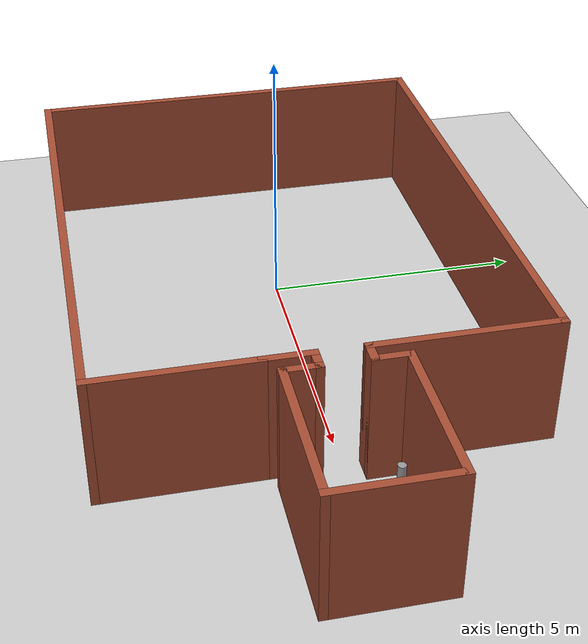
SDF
<sdf version="1.7">
 <world name="default">
  <light name="sun" type="directional">
   <pose>0 0 10 0 -0 0</pose>
   <diffuse>0.8 0.8 0.8 1</diffuse>
   <specular>0.2 0.2 0.2 1</specular>
   <attenuation>
    <range>1000</range>
    <constant>0.9</constant>
    <linear>0.01</linear>
    <quadratic>0.001</quadratic>
   </attenuation>
   <direction>-0.5 0.1 -0.9</direction>
   <spot><inner_angle>0</inner_angle><outer_angle>0</outer_angle><falloff>0</falloff></spot>
  </light>
  <model name="ground_plane">
   <static>1</static>
   <link name="link">
    <collision name="collision">
     <geometry><plane><normal>0 0 1</normal><size>100 100</size></plane></geometry>
     <surface><friction><ode><mu>100</mu><mu2>50</mu2></ode></friction></surface>
    </collision>
    <visual name="visual">
     <cast_shadows>0</cast_shadows>
     <geometry><plane><normal>0 0 1</normal><size>100 100</size></plane></geometry>
     <material>
      <script><uri>file://media/materials/scripts/gazebo.material</uri><name>Gazebo/Grey</name></script>
     </material>
    </visual>
   </link>
  </model>
  <gravity>0 0 -9.8</gravity>
  <magnetic_field>6e-06 2.3e-05 -4.2e-05</magnetic_field>
  <atmosphere type="adiabatic"/>
  <physics type="ode">
   <max_step_size>0.001</max_step_size>
   <real_time_factor>1</real_time_factor>
   <real_time_update_rate>1000</real_time_update_rate>
  </physics>
  <scene><ambient>0.4 0.4 0.4 1</ambient><background>0.7 0.7 0.7 1</background><shadows>1</shadows></scene>
  <audio><device>default</device></audio>
  <spherical_coordinates>
   <surface_model>EARTH_WGS84</surface_model>
   <latitude_deg>0</latitude_deg>
   <longitude_deg>0</longitude_deg>
   <elevation>0</elevation>
   <heading_deg>0</heading_deg>
  </spherical_coordinates>
  <model name="test6">
   <pose>2.27413 -0.22029 0 0 -0 0</pose>
   <link name="Wall_0">
    <collision name="Wall_0_Collision">
     <geometry><box><size>10 0.15 2.5</size></box></geometry>
     <pose>0 0 1.25 0 -0 0</pose>
    </collision>
    <visual name="Wall_0_Visual">
     <pose>0 0 1.25 0 -0 0</pose>
     <geometry><box><size>10 0.15 2.5</size></box></geometry>
     <material>
      <script><uri>file://media/materials/scripts/gazebo.material</uri><name>Gazebo/Bricks</name></script>
      <ambient>1 1 1 1</ambient>
     </material>
     <meta><layer>0</layer></meta>
    </visual>
    <pose>-1.6 3.975 0 0 -0 0</pose>
   </link>
   <link name="Wall_1">
    <collision name="Wall_1_Collision">
     <geometry><box><size>3.5 0.15 2.5</size></box></geometry>
     <pose>0 0 1.25 0 -0 0</pose>
    </collision>
    <visual name="Wall_1_Visual">
     <pose>0 0 1.25 0 -0 0</pose>
     <geometry><box><size>3.5 0.15 2.5</size></box></geometry>
     <material>
      <script><uri>file://media/materials/scripts/gazebo.material</uri><name>Gazebo/Bricks</name></script>
      <ambient>1 1 1 1</ambient>
     </material>
     <meta><layer>0</layer></meta>
    </visual>
    <pose>3.325 2.3 0 0 -0 -1.5708</pose>
   </link>
   <link name="Wall_14">
    <collision name="Wall_14_Collision">
     <geometry><box><size>3 0.15 2.5</size></box></geometry>
     <pose>0 0 1.25 0 -0 0</pose>
    </collision>
    <visual name="Wall_14_Visual">
     <pose>0 0 1.25 0 -0 0</pose>
     <geometry><box><size>3 0.15 2.5</size></box></geometry>
     <material>
      <script><uri>file://media/materials/scripts/gazebo.material</uri><name>Gazebo/Bricks</name></script>
      <ambient>1 1 1 1</ambient>
     </material>
     <meta><layer>0</layer></meta>
    </visual>
    <pose>5.1 1.225 0 0 -0 0</pose>
   </link>
   <link name="Wall_15">
    <collision name="Wall_15_Collision">
     <geometry><box><size>2.25 0.15 2.5</size></box></geometry>
     <pose>0 0 1.25 0 -0 0</pose>
    </collision>
    <visual name="Wall_15_Visual">
     <pose>0 0 1.25 0 -0 0</pose>
     <geometry><box><size>2.25 0.15 2.5</size></box></geometry>
     <material>
      <script><uri>file://media/materials/scripts/gazebo.material</uri><name>Gazebo/Bricks</name></script>
      <ambient>1 1 1 1</ambient>
     </material>
     <meta><layer>0</layer></meta>
    </visual>
    <pose>6.525 0.175 0 0 -0 -1.5708</pose>
   </link>
   <link name="Wall_16">
    <collision name="Wall_16_Collision">
     <geometry><box><size>3 0.15 2.5</size></box></geometry>
     <pose>0 0 1.25 0 -0 0</pose>
    </collision>
    <visual name="Wall_16_Visual">
     <pose>0 0 1.25 0 -0 0</pose>
     <geometry><box><size>3 0.15 2.5</size></box></geometry>
     <material>
      <script><uri>file://media/materials/scripts/gazebo.material</uri><name>Gazebo/Bricks</name></script>
      <ambient>1 1 1 1</ambient>
     </material>
     <meta><layer>0</layer></meta>
    </visual>
    <pose>5.1 -0.875 0 0 -0 3.14159</pose>
   </link>
   <link name="Wall_19">
    <collision name="Wall_19_Collision">
     <geometry><box><size>0.75 0.15 2.5</size></box></geometry>
     <pose>0 0 1.25 0 -0 0</pose>
    </collision>
    <visual name="Wall_19_Visual">
     <pose>0 0 1.25 0 -0 0</pose>
     <geometry><box><size>0.75 0.15 2.5</size></box></geometry>
     <material>
      <script><uri>file://media/materials/scripts/gazebo.material</uri><name>Gazebo/Bricks</name></script>
      <ambient>1 1 1 1</ambient>
     </material>
     <meta><layer>0</layer></meta>
    </visual>
    <pose>3.675 -0.575 0 0 -0 1.5708</pose>
   </link>
   <link name="Wall_2">
    <collision name="Wall_2_Collision">
     <geometry><box><size>0.5 0.15 2.5</size></box></geometry>
     <pose>0 0 1.25 0 -0 0</pose>
    </collision>
    <visual name="Wall_2_Visual">
     <pose>0 0 1.25 0 -0 0</pose>
     <geometry><box><size>0.5 0.15 2.5</size></box></geometry>
     <material>
      <script><uri>file://media/materials/scripts/gazebo.material</uri><name>Gazebo/Bricks</name></script>
      <ambient>1 1 1 1</ambient>
     </material>
     <meta><layer>0</layer></meta>
    </visual>
    <pose>3.5 0.625 0 0 -0 0</pose>
   </link>
   <link name="Wall_20">
    <collision name="Wall_20_Collision">
     <geometry><box><size>0.5 0.15 2.5</size></box></geometry>
     <pose>0 0 1.25 0 -0 0</pose>
    </collision>
    <visual name="Wall_20_Visual">
     <pose>0 0 1.25 0 -0 0</pose>
     <geometry><box><size>0.5 0.15 2.5</size></box></geometry>
     <material>
      <script><uri>file://media/materials/scripts/gazebo.material</uri><name>Gazebo/Bricks</name></script>
      <ambient>1 1 1 1</ambient>
     </material>
     <meta><layer>0</layer></meta>
    </visual>
    <pose>3.5 -0.275 0 0 -0 3.14159</pose>
   </link>
   <link name="Wall_21">
    <collision name="Wall_21_Collision">
     <geometry><box><size>1 0.15 2.5</size></box></geometry>
     <pose>0 0 1.25 0 -0 0</pose>
    </collision>
    <visual name="Wall_21_Visual">
     <pose>0 0 1.25 0 -0 0</pose>
     <geometry><box><size>1 0.15 2.5</size></box></geometry>
     <material>
      <script><uri>file://media/materials/scripts/gazebo.material</uri><name>Gazebo/Bricks</name></script>
      <ambient>1 1 1 1</ambient>
     </material>
     <meta><layer>0</layer></meta>
    </visual>
    <pose>3.325 -0.7 0 0 -0 -1.5708</pose>
   </link>
   <link name="Wall_24">
    <collision name="Wall_24_Collision">
     <geometry><box><size>3 0.15 2.5</size></box></geometry>
     <pose>0 0 1.25 0 -0 0</pose>
    </collision>
    <visual name="Wall_24_Visual">
     <pose>0 0 1.25 0 -0 0</pose>
     <geometry><box><size>3 0.15 2.5</size></box></geometry>
     <material>
      <script><uri>file://media/materials/scripts/gazebo.material</uri><name>Gazebo/Bricks</name></script>
      <ambient>1 1 1 1</ambient>
     </material>
     <meta><layer>0</layer></meta>
    </visual>
    <pose>3.325 -2.55 0 0 -0 -1.5708</pose>
   </link>
   <link name="Wall_25">
    <collision name="Wall_25_Collision">
     <geometry><box><size>10 0.15 2.5</size></box></geometry>
     <pose>0 0 1.25 0 -0 0</pose>
    </collision>
    <visual name="Wall_25_Visual">
     <pose>0 0 1.25 0 -0 0</pose>
     <geometry><box><size>10 0.15 2.5</size></box></geometry>
     <material>
      <script><uri>file://media/materials/scripts/gazebo.material</uri><name>Gazebo/Bricks</name></script>
      <ambient>1 1 1 1</ambient>
     </material>
     <meta><layer>0</layer></meta>
    </visual>
    <pose>-1.6 -3.975 0 0 -0 3.14159</pose>
   </link>
   <link name="Wall_26">
    <collision name="Wall_26_Collision">
     <geometry><box><size>8 0.15 2.5</size></box></geometry>
     <pose>0 0 1.25 0 -0 0</pose>
    </collision>
    <visual name="Wall_26_Visual">
     <pose>0 0 1.25 0 -0 0</pose>
     <geometry><box><size>8 0.15 2.5</size></box></geometry>
     <material>
      <script><uri>file://media/materials/scripts/gazebo.material</uri><name>Gazebo/Bricks</name></script>
      <ambient>1 1 1 1</ambient>
     </material>
     <meta><layer>0</layer></meta>
    </visual>
    <pose>-6.525 -0.05 0 0 -0 1.5708</pose>
   </link>
   <link name="Wall_3">
    <collision name="Wall_3_Collision">
     <geometry><box><size>0.75 0.15 2.5</size></box></geometry>
     <pose>0 0 1.25 0 -0 0</pose>
    </collision>
    <visual name="Wall_3_Visual">
     <pose>0 0 1.25 0 -0 0</pose>
     <geometry><box><size>0.75 0.15 2.5</size></box></geometry>
     <material>
      <script><uri>file://media/materials/scripts/gazebo.material</uri><name>Gazebo/Bricks</name></script>
      <ambient>1 1 1 1</ambient>
     </material>
     <meta><layer>0</layer></meta>
    </visual>
    <pose>3.675 0.925 0 0 -0 1.5708</pose>
   </link>
   <static>1</static>
  </model>
  <model name="human">
   <link name="link_0">
    <inertial>
     <mass>0.0249343</mass>
     <inertia>
      <ixx>0.00211672</ixx>
      <ixy>0</ixy>
      <ixz>0</ixz>
      <iyy>0.00211672</iyy>
      <iyz>0</iyz>
      <izz>7.77181e-05</izz>
     </inertia>
    </inertial>
    <pose>-3e-06 0 0 0 -0 0</pose>
    <visual name="visual">
     <geometry><cylinder><radius>0.0789546</radius><length>1</length></cylinder></geometry>
     <material>
      <lighting>1</lighting>
      <script><uri>file://media/materials/scripts/gazebo.material</uri><name>Gazebo/Grey</name></script>
      <shader type="pixel"/>
     </material>
    </visual>
    <collision name="collision">
     <geometry><cylinder><radius>0.078955</radius><length>1</length></cylinder></geometry>
     <surface>
      <friction>
       <ode><mu>1</mu><mu2>1</mu2><fdir1>0 0 0</fdir1><slip1>0</slip1><slip2>0</slip2></ode>
       <torsional>
        <coefficient>1</coefficient>
        <patch_radius>0</patch_radius>
        <surface_radius>0</surface_radius>
        <use_patch_radius>1</use_patch_radius>
        <ode><slip>0</slip></ode>
       </torsional>
      </friction>
      <bounce><restitution_coefficient>0</restitution_coefficient><threshold>1e+06</threshold></bounce>
      <contact>
       <collide_without_contact>0</collide_without_contact>
       <collide_without_contact_bitmask>1</collide_without_contact_bitmask>
       <collide_bitmask>1</collide_bitmask>
       <ode>
        <soft_cfm>0</soft_cfm>
        <soft_erp>0.2</soft_erp>
        <kp>1e+13</kp>
        <kd>1</kd>
        <max_vel>0.01</max_vel>
        <min_depth>0</min_depth>
       </ode>
       <bullet>
        <split_impulse>1</split_impulse>
        <split_impulse_penetration_threshold>-0.01</split_impulse_penetration_threshold>
        <soft_cfm>0</soft_cfm>
        <soft_erp>0.2</soft_erp>
        <kp>1e+13</kp>
        <kd>1</kd>
       </bullet>
      </contact>
     </surface>
    </collision>
   </link>
   <static>1</static>
   <pose>6.33302 0.841591 0 0 -0 0</pose>
  </model>
  <model name="human_clone">
   <link name="link_0">
    <inertial>
     <mass>0.0249343</mass>
     <inertia>
      <ixx>0.00211672</ixx>
      <ixy>0</ixy>
      <ixz>0</ixz>
      <iyy>0.00211672</iyy>
      <iyz>0</iyz>
      <izz>7.77181e-05</izz>
     </inertia>
    </inertial>
    <pose>-3e-06 0 0 0 -0 0</pose>
    <visual name="visual">
     <geometry><cylinder><radius>0.0789546</radius><length>1</length></cylinder></geometry>
     <material>
      <lighting>1</lighting>
      <script><uri>file://media/materials/scripts/gazebo.material</uri><name>Gazebo/Grey</name></script>
      <shader type="pixel"/>
     </material>
    </visual>
    <collision name="collision">
     <geometry><cylinder><radius>0.078955</radius><length>1</length></cylinder></geometry>
     <surface>
      <friction>
       <ode><mu>1</mu><mu2>1</mu2><fdir1>0 0 0</fdir1><slip1>0</slip1><slip2>0</slip2></ode>
       <torsional>
        <coefficient>1</coefficient>
        <patch_radius>0</patch_radius>
        <surface_radius>0</surface_radius>
        <use_patch_radius>1</use_patch_radius>
        <ode><slip>0</slip></ode>
       </torsional>
      </friction>
      <bounce><restitution_coefficient>0</restitution_coefficient><threshold>1e+06</threshold></bounce>
      <contact>
       <collide_without_contact>0</collide_without_contact>
       <collide_without_contact_bitmask>1</collide_without_contact_bitmask>
       <collide_bitmask>1</collide_bitmask>
       <ode>
        <soft_cfm>0</soft_cfm>
        <soft_erp>0.2</soft_erp>
        <kp>1e+13</kp>
        <kd>1</kd>
        <max_vel>0.01</max_vel>
        <min_depth>0</min_depth>
       </ode>
       <bullet>
        <split_impulse>1</split_impulse>
        <split_impulse_penetration_threshold>-0.01</split_impulse_penetration_threshold>
        <soft_cfm>0</soft_cfm>
        <soft_erp>0.2</soft_erp>
        <kp>1e+13</kp>
        <kd>1</kd>
       </bullet>
      </contact>
     </surface>
    </collision>
   </link>
   <static>1</static>
   <pose>6.80201 0.807494 0 0 -0 0</pose>
  </model>
  <model name="human_clone_0">
   <link name="link_0">
    <inertial>
     <mass>0.0249343</mass>
     <inertia>
      <ixx>0.00211672</ixx>
      <ixy>0</ixy>
      <ixz>0</ixz>
      <iyy>0.00211672</iyy>
      <iyz>0</iyz>
      <izz>7.77181e-05</izz>
     </inertia>
    </inertial>
    <pose>-3e-06 0 0 0 -0 0</pose>
    <visual name="visual">
     <geometry><cylinder><radius>0.0789546</radius><length>1</length></cylinder></geometry>
     <material>
      <lighting>1</lighting>
      <script><uri>file://media/materials/scripts/gazebo.material</uri><name>Gazebo/Grey</name></script>
      <shader type="pixel"/>
     </material>
    </visual>
    <collision name="collision">
     <geometry><cylinder><radius>0.078955</radius><length>1</length></cylinder></geometry>
     <surface>
      <friction>
       <ode><mu>1</mu><mu2>1</mu2><fdir1>0 0 0</fdir1><slip1>0</slip1><slip2>0</slip2></ode>
       <torsional>
        <coefficient>1</coefficient>
        <patch_radius>0</patch_radius>
        <surface_radius>0</surface_radius>
        <use_patch_radius>1</use_patch_radius>
        <ode><slip>0</slip></ode>
       </torsional>
      </friction>
      <bounce><restitution_coefficient>0</restitution_coefficient><threshold>1e+06</threshold></bounce>
      <contact>
       <collide_without_contact>0</collide_without_contact>
       <collide_without_contact_bitmask>1</collide_without_contact_bitmask>
       <collide_bitmask>1</collide_bitmask>
       <ode>
        <soft_cfm>0</soft_cfm>
        <soft_erp>0.2</soft_erp>
        <kp>1e+13</kp>
        <kd>1</kd>
        <max_vel>0.01</max_vel>
        <min_depth>0</min_depth>
       </ode>
       <bullet>
        <split_impulse>1</split_impulse>
        <split_impulse_penetration_threshold>-0.01</split_impulse_penetration_threshold>
        <soft_cfm>0</soft_cfm>
        <soft_erp>0.2</soft_erp>
        <kp>1e+13</kp>
        <kd>1</kd>
       </bullet>
      </contact>
     </surface>
    </collision>
   </link>
   <static>1</static>
   <pose>8.55304 0.797432 0 0 -0 0</pose>
  </model>
  <model name="human_clone_1">
   <link name="link_0">
    <inertial>
     <mass>0.0249343</mass>
     <inertia>
      <ixx>0.00211672</ixx>
      <ixy>0</ixy>
      <ixz>0</ixz>
      <iyy>0.00211672</iyy>
      <iyz>0</iyz>
      <izz>7.77181e-05</izz>
     </inertia>
    </inertial>
    <pose>-3e-06 0 0 0 -0 0</pose>
    <visual name="visual">
     <geometry><cylinder><radius>0.0789546</radius><length>1</length></cylinder></geometry>
     <material>
      <lighting>1</lighting>
      <script><uri>file://media/materials/scripts/gazebo.material</uri><name>Gazebo/Grey</name></script>
      <shader type="pixel"/>
     </material>
    </visual>
    <collision name="collision">
     <geometry><cylinder><radius>0.078955</radius><length>1</length></cylinder></geometry>
     <surface>
      <friction>
       <ode><mu>1</mu><mu2>1</mu2><fdir1>0 0 0</fdir1><slip1>0</slip1><slip2>0</slip2></ode>
       <torsional>
        <coefficient>1</coefficient>
        <patch_radius>0</patch_radius>
        <surface_radius>0</surface_radius>
        <use_patch_radius>1</use_patch_radius>
        <ode><slip>0</slip></ode>
       </torsional>
      </friction>
      <bounce><restitution_coefficient>0</restitution_coefficient><threshold>1e+06</threshold></bounce>
      <contact>
       <collide_without_contact>0</collide_without_contact>
       <collide_without_contact_bitmask>1</collide_without_contact_bitmask>
       <collide_bitmask>1</collide_bitmask>
       <ode>
        <soft_cfm>0</soft_cfm>
        <soft_erp>0.2</soft_erp>
        <kp>1e+13</kp>
        <kd>1</kd>
        <max_vel>0.01</max_vel>
        <min_depth>0</min_depth>
       </ode>
       <bullet>
        <split_impulse>1</split_impulse>
        <split_impulse_penetration_threshold>-0.01</split_impulse_penetration_threshold>
        <soft_cfm>0</soft_cfm>
        <soft_erp>0.2</soft_erp>
        <kp>1e+13</kp>
        <kd>1</kd>
       </bullet>
      </contact>
     </surface>
    </collision>
   </link>
   <static>1</static>
   <pose>8.13253 0.757464 0 0 -0 0</pose>
  </model>
  <model name="human_clone_2">
   <link name="link_0">
    <inertial>
     <mass>0.0249343</mass>
     <inertia>
      <ixx>0.00211672</ixx>
      <ixy>0</ixy>
      <ixz>0</ixz>
      <iyy>0.00211672</iyy>
      <iyz>0</iyz>
      <izz>7.77181e-05</izz>
     </inertia>
    </inertial>
    <pose>-3e-06 0 0 0 -0 0</pose>
    <visual name="visual">
     <geometry><cylinder><radius>0.0789546</radius><length>1</length></cylinder></geometry>
     <material>
      <lighting>1</lighting>
      <script><uri>file://media/materials/scripts/gazebo.material</uri><name>Gazebo/Grey</name></script>
      <shader type="pixel"/>
     </material>
    </visual>
    <collision name="collision">
     <geometry><cylinder><radius>0.078955</radius><length>1</length></cylinder></geometry>
     <surface>
      <friction>
       <ode><mu>1</mu><mu2>1</mu2><fdir1>0 0 0</fdir1><slip1>0</slip1><slip2>0</slip2></ode>
       <torsional>
        <coefficient>1</coefficient>
        <patch_radius>0</patch_radius>
        <surface_radius>0</surface_radius>
        <use_patch_radius>1</use_patch_radius>
        <ode><slip>0</slip></ode>
       </torsional>
      </friction>
      <bounce><restitution_coefficient>0</restitution_coefficient><threshold>1e+06</threshold></bounce>
      <contact>
       <collide_without_contact>0</collide_without_contact>
       <collide_without_contact_bitmask>1</collide_without_contact_bitmask>
       <collide_bitmask>1</collide_bitmask>
       <ode>
        <soft_cfm>0</soft_cfm>
        <soft_erp>0.2</soft_erp>
        <kp>1e+13</kp>
        <kd>1</kd>
        <max_vel>0.01</max_vel>
        <min_depth>0</min_depth>
       </ode>
       <bullet>
        <split_impulse>1</split_impulse>
        <split_impulse_penetration_threshold>-0.01</split_impulse_penetration_threshold>
        <soft_cfm>0</soft_cfm>
        <soft_erp>0.2</soft_erp>
        <kp>1e+13</kp>
        <kd>1</kd>
       </bullet>
      </contact>
     </surface>
    </collision>
   </link>
   <static>1</static>
   <pose>8.60382 0.313479 0 0 -0 0</pose>
  </model>
  <model name="human_clone_3">
   <link name="link_0">
    <inertial>
     <mass>0.0249343</mass>
     <inertia>
      <ixx>0.00211672</ixx>
      <ixy>0</ixy>
      <ixz>0</ixz>
      <iyy>0.00211672</iyy>
      <iyz>0</iyz>
      <izz>7.77181e-05</izz>
     </inertia>
    </inertial>
    <pose>-3e-06 0 0 0 -0 0</pose>
    <visual name="visual">
     <geometry><cylinder><radius>0.0789546</radius><length>1</length></cylinder></geometry>
     <material>
      <lighting>1</lighting>
      <script><uri>file://media/materials/scripts/gazebo.material</uri><name>Gazebo/Grey</name></script>
      <shader type="pixel"/>
     </material>
    </visual>
    <collision name="collision">
     <geometry><cylinder><radius>0.078955</radius><length>1</length></cylinder></geometry>
     <surface>
      <friction>
       <ode><mu>1</mu><mu2>1</mu2><fdir1>0 0 0</fdir1><slip1>0</slip1><slip2>0</slip2></ode>
       <torsional>
        <coefficient>1</coefficient>
        <patch_radius>0</patch_radius>
        <surface_radius>0</surface_radius>
        <use_patch_radius>1</use_patch_radius>
        <ode><slip>0</slip></ode>
       </torsional>
      </friction>
      <bounce><restitution_coefficient>0</restitution_coefficient><threshold>1e+06</threshold></bounce>
      <contact>
       <collide_without_contact>0</collide_without_contact>
       <collide_without_contact_bitmask>1</collide_without_contact_bitmask>
       <collide_bitmask>1</collide_bitmask>
       <ode>
        <soft_cfm>0</soft_cfm>
        <soft_erp>0.2</soft_erp>
        <kp>1e+13</kp>
        <kd>1</kd>
        <max_vel>0.01</max_vel>
        <min_depth>0</min_depth>
       </ode>
       <bullet>
        <split_impulse>1</split_impulse>
        <split_impulse_penetration_threshold>-0.01</split_impulse_penetration_threshold>
        <soft_cfm>0</soft_cfm>
        <soft_erp>0.2</soft_erp>
        <kp>1e+13</kp>
        <kd>1</kd>
       </bullet>
      </contact>
     </surface>
    </collision>
   </link>
   <static>1</static>
   <pose>8.5989 -0.456283 0 0 -0 0</pose>
  </model>
  <model name="human_clone_4">
   <link name="link_0">
    <inertial>
     <mass>0.0249343</mass>
     <inertia>
      <ixx>0.00211672</ixx>
      <ixy>0</ixy>
      <ixz>0</ixz>
      <iyy>0.00211672</iyy>
      <iyz>0</iyz>
      <izz>7.77181e-05</izz>
     </inertia>
    </inertial>
    <pose>-3e-06 0 0 0 -0 0</pose>
    <visual name="visual">
     <geometry><cylinder><radius>0.0789546</radius><length>1</length></cylinder></geometry>
     <material>
      <lighting>1</lighting>
      <script><uri>file://media/materials/scripts/gazebo.material</uri><name>Gazebo/Grey</name></script>
      <shader type="pixel"/>
     </material>
    </visual>
    <collision name="collision">
     <geometry><cylinder><radius>0.078955</radius><length>1</length></cylinder></geometry>
     <surface>
      <friction>
       <ode><mu>1</mu><mu2>1</mu2><fdir1>0 0 0</fdir1><slip1>0</slip1><slip2>0</slip2></ode>
       <torsional>
        <coefficient>1</coefficient>
        <patch_radius>0</patch_radius>
        <surface_radius>0</surface_radius>
        <use_patch_radius>1</use_patch_radius>
        <ode><slip>0</slip></ode>
       </torsional>
      </friction>
      <bounce><restitution_coefficient>0</restitution_coefficient><threshold>1e+06</threshold></bounce>
      <contact>
       <collide_without_contact>0</collide_without_contact>
       <collide_without_contact_bitmask>1</collide_without_contact_bitmask>
       <collide_bitmask>1</collide_bitmask>
       <ode>
        <soft_cfm>0</soft_cfm>
        <soft_erp>0.2</soft_erp>
        <kp>1e+13</kp>
        <kd>1</kd>
        <max_vel>0.01</max_vel>
        <min_depth>0</min_depth>
       </ode>
       <bullet>
        <split_impulse>1</split_impulse>
        <split_impulse_penetration_threshold>-0.01</split_impulse_penetration_threshold>
        <soft_cfm>0</soft_cfm>
        <soft_erp>0.2</soft_erp>
        <kp>1e+13</kp>
        <kd>1</kd>
       </bullet>
      </contact>
     </surface>
    </collision>
   </link>
   <static>1</static>
   <pose>8.06707 -0.915069 0 0 -0 0</pose>
  </model>
  <model name="human_clone_5">
   <link name="link_0">
    <inertial>
     <mass>0.0249343</mass>
     <inertia>
      <ixx>0.00211672</ixx>
      <ixy>0</ixy>
      <ixz>0</ixz>
      <iyy>0.00211672</iyy>
      <iyz>0</iyz>
      <izz>7.77181e-05</izz>
     </inertia>
    </inertial>
    <pose>-3e-06 0 0 0 -0 0</pose>
    <visual name="visual">
     <geometry><cylinder><radius>0.0789546</radius><length>1</length></cylinder></geometry>
     <material>
      <lighting>1</lighting>
      <script><uri>file://media/materials/scripts/gazebo.material</uri><name>Gazebo/Grey</name></script>
      <shader type="pixel"/>
     </material>
    </visual>
    <collision name="collision">
     <geometry><cylinder><radius>0.078955</radius><length>1</length></cylinder></geometry>
     <surface>
      <friction>
       <ode><mu>1</mu><mu2>1</mu2><fdir1>0 0 0</fdir1><slip1>0</slip1><slip2>0</slip2></ode>
       <torsional>
        <coefficient>1</coefficient>
        <patch_radius>0</patch_radius>
        <surface_radius>0</surface_radius>
        <use_patch_radius>1</use_patch_radius>
        <ode><slip>0</slip></ode>
       </torsional>
      </friction>
      <bounce><restitution_coefficient>0</restitution_coefficient><threshold>1e+06</threshold></bounce>
      <contact>
       <collide_without_contact>0</collide_without_contact>
       <collide_without_contact_bitmask>1</collide_without_contact_bitmask>
       <collide_bitmask>1</collide_bitmask>
       <ode>
        <soft_cfm>0</soft_cfm>
        <soft_erp>0.2</soft_erp>
        <kp>1e+13</kp>
        <kd>1</kd>
        <max_vel>0.01</max_vel>
        <min_depth>0</min_depth>
       </ode>
       <bullet>
        <split_impulse>1</split_impulse>
        <split_impulse_penetration_threshold>-0.01</split_impulse_penetration_threshold>
        <soft_cfm>0</soft_cfm>
        <soft_erp>0.2</soft_erp>
        <kp>1e+13</kp>
        <kd>1</kd>
       </bullet>
      </contact>
     </surface>
    </collision>
   </link>
   <static>1</static>
   <pose>6.33896 -0.821347 0 0 -0 0</pose>
  </model>
  <model name="human_clone_6">
   <link name="link_0">
    <inertial>
     <mass>0.0249343</mass>
     <inertia>
      <ixx>0.00211672</ixx>
      <ixy>0</ixy>
      <ixz>0</ixz>
      <iyy>0.00211672</iyy>
      <iyz>0</iyz>
      <izz>7.77181e-05</izz>
     </inertia>
    </inertial>
    <pose>-3e-06 0 0 0 -0 0</pose>
    <visual name="visual">
     <geometry><cylinder><radius>0.0789546</radius><length>1</length></cylinder></geometry>
     <material>
      <lighting>1</lighting>
      <script><uri>file://media/materials/scripts/gazebo.material</uri><name>Gazebo/Grey</name></script>
      <shader type="pixel"/>
     </material>
    </visual>
    <collision name="collision">
     <geometry><cylinder><radius>0.078955</radius><length>1</length></cylinder></geometry>
     <surface>
      <friction>
       <ode><mu>1</mu><mu2>1</mu2><fdir1>0 0 0</fdir1><slip1>0</slip1><slip2>0</slip2></ode>
       <torsional>
        <coefficient>1</coefficient>
        <patch_radius>0</patch_radius>
        <surface_radius>0</surface_radius>
        <use_patch_radius>1</use_patch_radius>
        <ode><slip>0</slip></ode>
       </torsional>
      </friction>
      <bounce><restitution_coefficient>0</restitution_coefficient><threshold>1e+06</threshold></bounce>
      <contact>
       <collide_without_contact>0</collide_without_contact>
       <collide_without_contact_bitmask>1</collide_without_contact_bitmask>
       <collide_bitmask>1</collide_bitmask>
       <ode>
        <soft_cfm>0</soft_cfm>
        <soft_erp>0.2</soft_erp>
        <kp>1e+13</kp>
        <kd>1</kd>
        <max_vel>0.01</max_vel>
        <min_depth>0</min_depth>
       </ode>
       <bullet>
        <split_impulse>1</split_impulse>
        <split_impulse_penetration_threshold>-0.01</split_impulse_penetration_threshold>
        <soft_cfm>0</soft_cfm>
        <soft_erp>0.2</soft_erp>
        <kp>1e+13</kp>
        <kd>1</kd>
       </bullet>
      </contact>
     </surface>
    </collision>
   </link>
   <static>1</static>
   <pose>7.31996 -0.837433 0 0 -0 0</pose>
  </model>
 </world>
</sdf>
